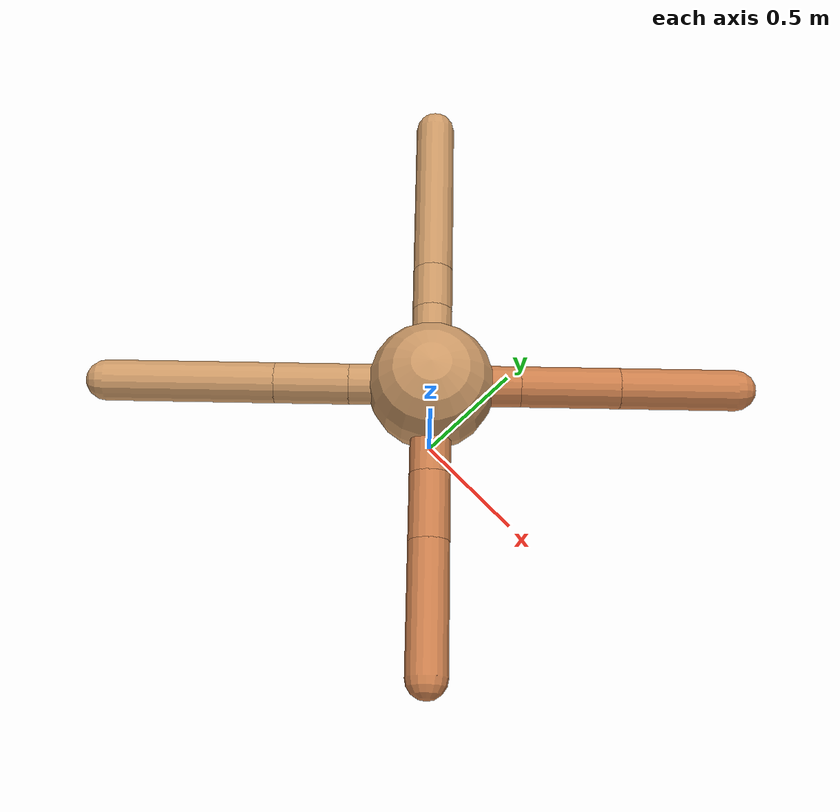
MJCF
<mujoco model="ant">
  <compiler angle="degree" coordinate="local" inertiafromgeom="true" />
  <option integrator="RK4" timestep="0.01" />
  <custom>
    <numeric data="0.0 0.0 0.55 1.0 0.0 0.0 0.0 0.0 1.0 0.0 -1.0 0.0 -1.0 0.0 1.0" name="init_qpos" />
  </custom>
  <default>
    <joint armature="1" damping="1" limited="true" />
    <geom conaffinity="0" condim="3" density="5.0" friction="1.5 0.1 0.1" margin="0.01" rgba="0.8 0.6 0.4 1" />
  </default>
  <worldbody>
    <body name="torso" pos="0 0 0.75">
      <geom name="torso_geom" pos="0 0 0" size="0.25" type="sphere" />

      <body name="front_left_leg" pos="0 0 0">
        <geom fromto="0.0 0.0 0.0 0.2456307639109146 0.2456307639109146 0.0" name="aux_1_geom" size="0.08" type="capsule" rgba=".8 .5 .3 1" />
        <body name="aux_1" pos="0.2456307639109146 0.2456307639109146 0.0">
          <joint axis="0 0 1" name="hip_1" pos="0.0 0.0 0.0" range="-40 40" type="hinge" />
          <geom fromto="0.0 0.0 0.0 0.27213994633799915 0.27213994633799915 0.0" name="left_leg_geom" size="0.08" type="capsule" rgba=".8 .5 .3 1" />
          <body pos="0.27213994633799915 0.27213994633799915 0.0" name="front_left_foot">
            <joint axis="-1 1 0" name="ankle_1" pos="0.0 0.0 0.0" range="30 100" type="hinge" />
            <geom fromto="0.0 0.0 0.0 0.3197614498851671 0.3197614498851671 0.0" name="left_ankle_geom" size="0.08" type="capsule" rgba=".8 .5 .3 1" />
          </body>
        </body>
      </body>
      <body name="front_right_leg" pos="0 0 0">
        <geom fromto="0.0 0.0 0.0 -0.22762703833120665 0.22762703833120665 0.0" name="aux_2_geom" size="0.08" type="capsule" />
        <body name="aux_2" pos="-0.22762703833120665 0.22762703833120665 0.0">
          <joint axis="0 0 1" name="hip_2" pos="0.0 0.0 0.0" range="-40 40" type="hinge" />
          <geom fromto="0.0 0.0 0.0 -0.12677386840663546 0.12677386840663546 0.0" name="right_leg_geom" size="0.08" type="capsule" />
          <body pos="-0.12677386840663546 0.12677386840663546 0.0" name="front_right_foot">
            <joint axis="1 1 0" name="ankle_2" pos="0.0 0.0 0.0" range="-100 -30" type="hinge" />
            <geom fromto="0.0 0.0 0.0 -0.48028750775172463 0.48028750775172463 0.0" name="right_ankle_geom" size="0.08" type="capsule" />
          </body>
        </body>
      </body>
      <body name="left_back_leg" pos="0 0 0">
        <geom fromto="0.0 0.0 0.0 -0.22601999779891277 -0.22601999779891277 0.0" name="aux_3_geom" size="0.08" type="capsule" />
        <body name="aux_3" pos="-0.22601999779891277 -0.22601999779891277 0.0">
          <joint axis="0 0 1" name="hip_3" pos="0.0 0.0 0.0" range="-40 40" type="hinge" />
          <geom fromto="0.0 0.0 0.0 -0.20507980916949853 -0.20507980916949853 0.0" name="back_leg_geom" size="0.08" type="capsule" />
          <body pos="-0.20507980916949853 -0.20507980916949853 0.0" name="left_back_foot">
            <joint axis="-1 1 0" name="ankle_3" pos="0.0 0.0 0.0" range="-100 -30" type="hinge" />
            <geom fromto="0.0 0.0 0.0 -0.46635310182458145 -0.46635310182458145 0.0" name="third_ankle_geom" size="0.08" type="capsule" />
          </body>
        </body>
      </body>
      <body name="right_back_leg" pos="0 0 0">
        <geom fromto="0.0 0.0 0.0 0.2583533723177544 -0.2583533723177544 0.0" name="aux_4_geom" size="0.08" type="capsule" rgba=".8 .5 .3 1" />
        <body name="aux_4" pos="0.2583533723177544 -0.2583533723177544 0.0">
          <joint axis="0 0 1" name="hip_4" pos="0.0 0.0 0.0" range="-40 40" type="hinge" />
          <geom fromto="0.0 0.0 0.0 0.18359937413301852 -0.18359937413301852 0.0" name="rightback_leg_geom" size="0.08" type="capsule" rgba=".8 .5 .3 1" />
          <body pos="0.18359937413301852 -0.18359937413301852 0.0" name="right_back_foot">
            <joint axis="1 1 0" name="ankle_4" pos="0.0 0.0 0.0" range="30 100" type="hinge" />
            <geom fromto="0.0 0.0 0.0 0.3485466878154349 -0.3485466878154349 0.0" name="fourth_ankle_geom" size="0.08" type="capsule" rgba=".8 .5 .3 1" />
          </body>
        </body>
      </body>
    </body>
  </worldbody>
  <actuator>
    <motor ctrllimited="true" ctrlrange="-1.0 1.0" joint="hip_4" gear="150" />
    <motor ctrllimited="true" ctrlrange="-1.0 1.0" joint="ankle_4" gear="150" />
    <motor ctrllimited="true" ctrlrange="-1.0 1.0" joint="hip_1" gear="150" />
    <motor ctrllimited="true" ctrlrange="-1.0 1.0" joint="ankle_1" gear="150" />
    <motor ctrllimited="true" ctrlrange="-1.0 1.0" joint="hip_2" gear="150" />
    <motor ctrllimited="true" ctrlrange="-1.0 1.0" joint="ankle_2" gear="150" />
    <motor ctrllimited="true" ctrlrange="-1.0 1.0" joint="hip_3" gear="150" />
    <motor ctrllimited="true" ctrlrange="-1.0 1.0" joint="ankle_3" gear="150" />
  </actuator>
</mujoco>
